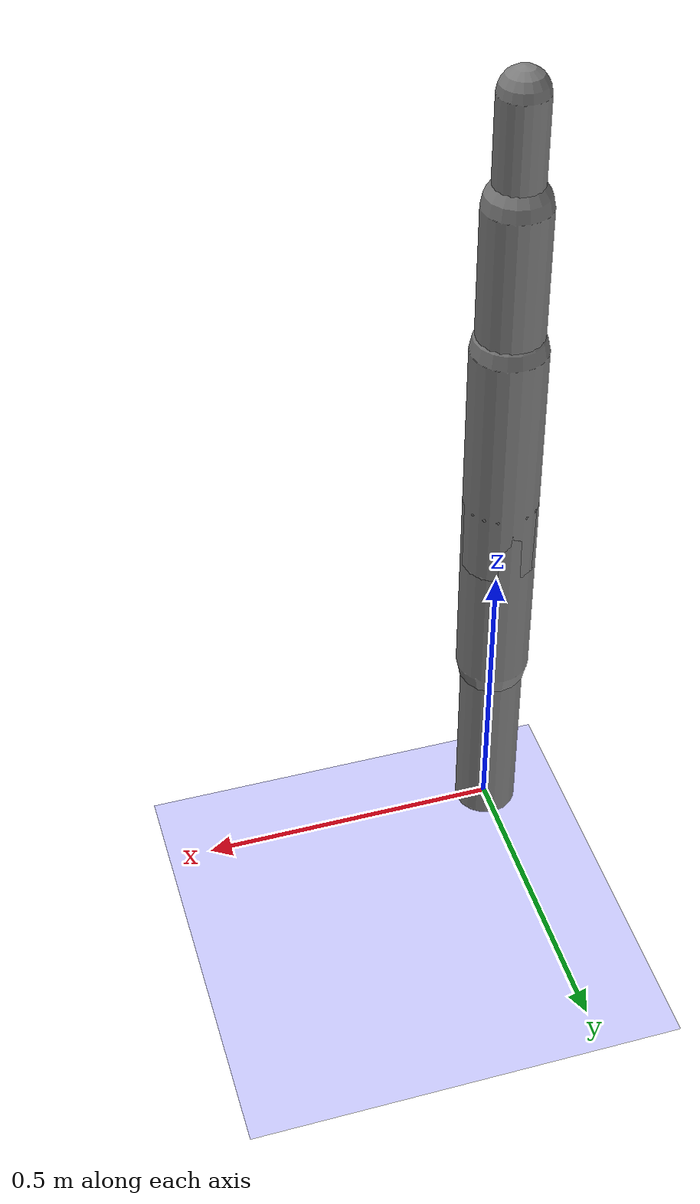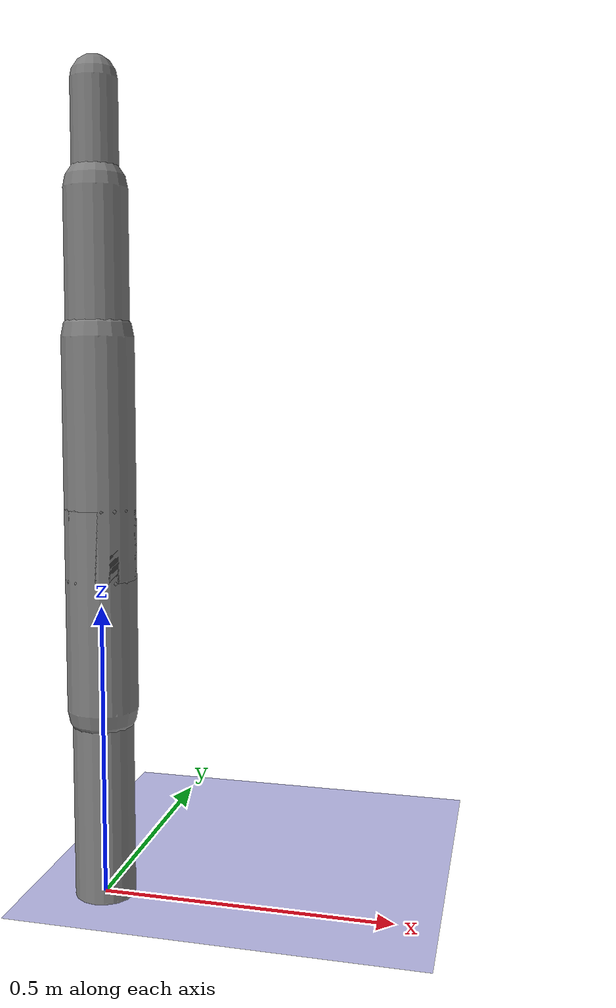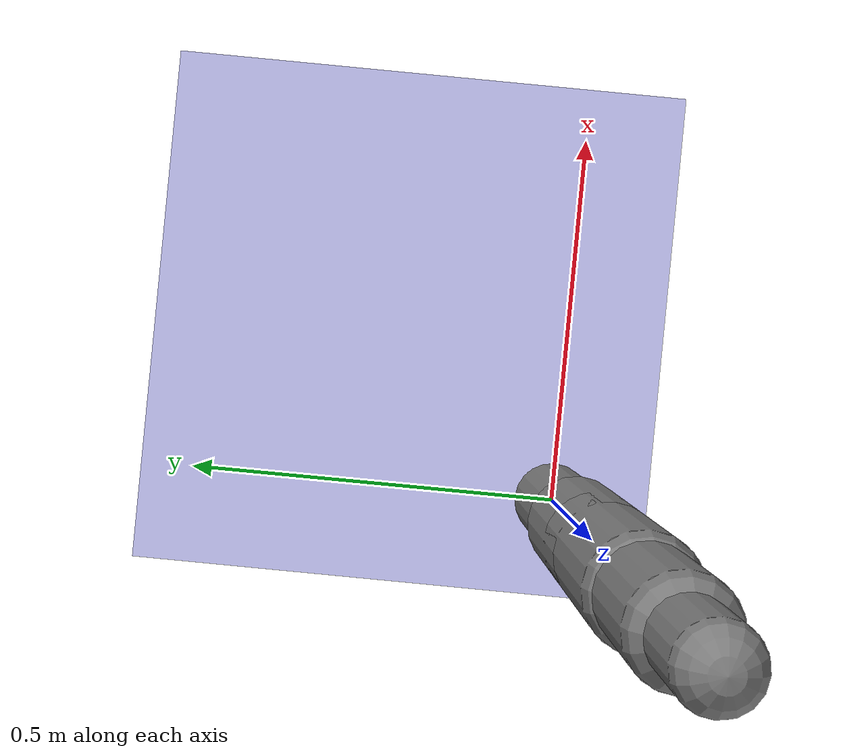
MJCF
<?xml version='1.0' encoding='UTF-8'?>
<mujoco model="robot_model">
  <worldbody>
    <light name="light" pos="0 -3 10" dir="0 0.5 -1" diffuse=".8 .8 .8" specular="0.1 0.1 0.1"/>
    <geom name="floor" type="plane" size="10.0 10.0 0.1" pos="0 0 0" rgba="0.8 0.8 1 1" contype="2" conaffinity="1"/>
    <body name="limb0" pos="0 0 0">
      <geom type="capsule" fromto="0 0 0 0 0 0.525347778299795" size="0.05170217602068913" density="564.0730661245019" contype="1" conaffinity="2"/>
      <site type="sphere" size="0.01" name="limb0_site0" pos="0 0 0.3258277590879252"/>
      <site type="sphere" size="0.01" name="limb0_site1" pos="0 0 0.47673029027108604"/>
      <site type="sphere" size="0.01" name="limb0_site2" pos="0 0 0.377935789524766"/>
      <freejoint name="limb0_root"/>
      <body name="limb1" pos="0 0 0.3258277590879252">
        <geom type="capsule" fromto="0 0 0 0 0 0.3417792831284901" size="0.06" density="737.8556409912289" contype="1" conaffinity="2"/>
        <site type="sphere" size="0.01" name="limb1_site0" pos="0 0 0.09095781368284962"/>
        <body name="limb2" pos="0 0 0.09095781368284962">
          <geom type="capsule" fromto="0 0 0 0 0 0.42075223148732316" size="0.029294916785572153" density="1138.8241278267756" contype="1" conaffinity="2"/>
          <site type="sphere" size="0.01" name="limb2_site0" pos="0 0 0.08379767948799274"/>
          <body name="limb3" pos="0 0 0.08379767948799274">
            <geom type="capsule" fromto="0 0 0 0 0 0.44725352205808966" size="0.03564490912095247" density="1041.1841761778296" contype="1" conaffinity="2"/>
            <joint name="joint_limb2_limb3_0" type="hinge" axis="0 0 1" range="-20.29398957053876 20.29398957053876" damping="5.0"/>
          </body>
          <joint name="joint_limb1_limb2_0" type="hinge" axis="0 1 0" range="-64.93935351226119 64.93935351226119" damping="5.0"/>
        </body>
        <joint name="joint_limb0_limb1_0" type="hinge" axis="0 1 0" range="-119.50965052353241 119.50965052353241" damping="5.0"/>
      </body>
      <body name="limb4" pos="0 0 0.47673029027108604">
        <geom type="capsule" fromto="0 0 0 0 0 0.2989690781950476" size="0.050309153812331656" density="823.4497281574163" contype="1" conaffinity="2"/>
        <site type="sphere" size="0.01" name="limb4_site0" pos="0 0 0.07225356546491618"/>
        <site type="sphere" size="0.01" name="limb4_site1" pos="0 0 0.2420784842792399"/>
        <body name="limb5" pos="0 0 0.07225356546491618">
          <geom type="capsule" fromto="0 0 0 0 0 0.40076880705749024" size="0.06" density="418.3124109115139" contype="1" conaffinity="2"/>
          <site type="sphere" size="0.01" name="limb5_site0" pos="0 0 0.40076880705749024"/>
          <site type="sphere" size="0.01" name="limb5_site1" pos="0 0 0.37220483834722906"/>
          <body name="limb6" pos="0 0 0.40076880705749024">
            <geom type="capsule" fromto="0 0 0 0 0 0.2382089942244294" size="0.05271733776593019" density="953.4100928451663" contype="1" conaffinity="2"/>
            <joint name="joint_limb5_limb6_0" type="hinge" axis="1 0 0" range="-110.66857311312557 110.66857311312557" damping="5.0"/>
          </body>
          <body name="limb7" pos="0 0 0.37220483834722906">
            <geom type="capsule" fromto="0 0 0 0 0 0.43740454365124354" size="0.03854550212722826" density="501.89877855324744" contype="1" conaffinity="2"/>
            <joint name="joint_limb5_limb7_0" type="hinge" axis="1 0 0" range="-97.99919740632275 97.99919740632275" damping="5.0"/>
          </body>
          <joint name="joint_limb4_limb5_0" type="hinge" axis="0 1 0" range="-120.0 120.0" damping="5.0"/>
        </body>
        <body name="limb8" pos="0 0 0.2420784842792399">
          <geom type="capsule" fromto="0 0 0 0 0 0.33444922592509313" size="0.0315332302803031" density="843.2724017386142" contype="1" conaffinity="2"/>
          <joint name="joint_limb4_limb8_0" type="hinge" axis="1 0 0" range="-76.04759520061859 76.04759520061859" damping="5.0"/>
        </body>
        <joint name="joint_limb0_limb4_0" type="hinge" axis="0 1 0" range="-61.46558493556708 61.46558493556708" damping="5.0"/>
      </body>
      <body name="limb9" pos="0 0 0.377935789524766">
        <geom type="capsule" fromto="0 0 0 0 0 0.3390209356510857" size="0.056972380129968095" density="679.5462153507075" contype="1" conaffinity="2"/>
        <joint name="joint_limb0_limb9_0" type="hinge" axis="0 1 0" range="-76.9634112741505 76.9634112741505" damping="5.0"/>
      </body>
    </body>
  </worldbody>
  <actuator>
    <position name="position_actuator_joint_limb0_limb1_0" joint="joint_limb0_limb1_0" gear="1.923415512406648" inheritrange="1" kp="100.0"/>
    <position name="position_actuator_joint_limb1_limb2_0" joint="joint_limb1_limb2_0" gear="0.8397811922170415" inheritrange="1" kp="100.0"/>
    <position name="position_actuator_joint_limb2_limb3_0" joint="joint_limb2_limb3_0" gear="2.0" inheritrange="1" kp="100.0"/>
    <position name="position_actuator_joint_limb0_limb4_0" joint="joint_limb0_limb4_0" gear="1.601725357683094" inheritrange="1" kp="100.0"/>
    <position name="position_actuator_joint_limb4_limb5_0" joint="joint_limb4_limb5_0" gear="0.7587513588861756" inheritrange="1" kp="100.0"/>
    <position name="position_actuator_joint_limb5_limb6_0" joint="joint_limb5_limb6_0" gear="0.5200324229517321" inheritrange="1" kp="100.0"/>
    <position name="position_actuator_joint_limb5_limb7_0" joint="joint_limb5_limb7_0" gear="1.0804339914187346" inheritrange="1" kp="100.0"/>
    <position name="position_actuator_joint_limb4_limb8_0" joint="joint_limb4_limb8_0" gear="0.9326318216468157" inheritrange="1" kp="100.0"/>
    <position name="position_actuator_joint_limb0_limb9_0" joint="joint_limb0_limb9_0" gear="1.25739722463336" inheritrange="1" kp="100.0"/>
  </actuator>
</mujoco>
